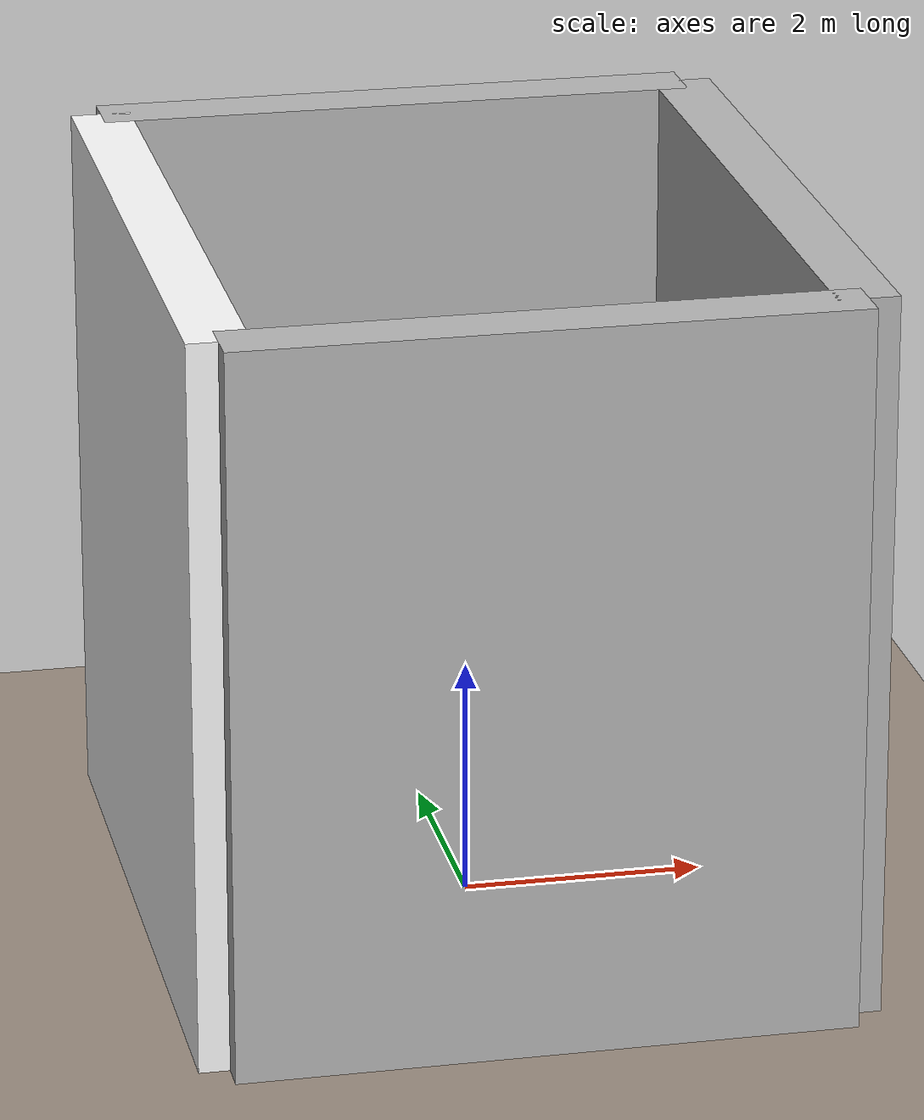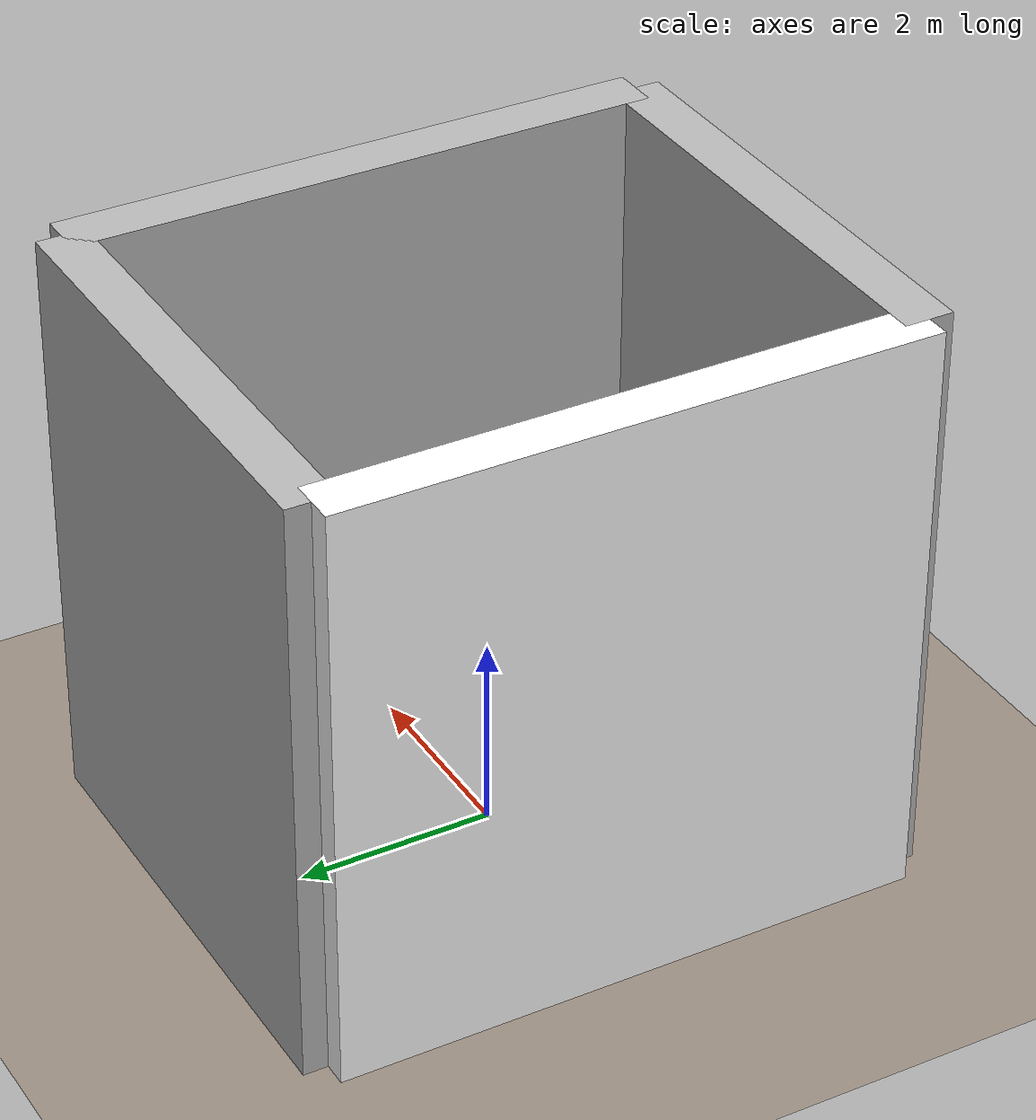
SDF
<sdf version="1.6">
 <world name="rectangular_walls_world">
  <physics name="default_physics" type="ode"><gravity>0 0 -9.81</gravity></physics>
  <light name="sun" type="directional">
   <pose>0 0 100 0 0 0</pose>
   <diffuse>0.8 0.8 0.8 1</diffuse>
   <specular>0.5 0.5 0.5 1</specular>
   <direction>-0.5 -0.5 -1</direction>
  </light>
  <model name="ground">
   <static>true</static>
   <link name="ground_link">
    <collision name="ground_collision">
     <geometry><plane><normal>0 0 1</normal><size>200 200</size></plane></geometry>
    </collision>
    <visual name="ground_visual">
     <geometry><plane><normal>0 0 1</normal><size>200 200</size></plane></geometry>
     <material><ambient>0.4 0.4 0.4 1</ambient><diffuse>0.6 0.55 0.5 1</diffuse></material>
    </visual>
   </link>
  </model>
  <model name="big_rectangular_walls">
   <static>true</static>
   <link name="walls_link">
    <visual name="front_visual">
     <pose>0 -3 3 0 0 0</pose>
     <geometry><box><size>5 0.5 6</size></box></geometry>
     <material>
      <pbr>
       <metal>
        <albedo_map>file:///home/pika/bricks.jpg</albedo_map>
        <roughness>0.8</roughness>
        <metalness>0.1</metalness>
       </metal>
      </pbr>
     </material>
    </visual>
    <collision name="front_collision">
     <pose>0 -3 3 0 0 0</pose>
     <geometry><box><size>5 0.5 6</size></box></geometry>
    </collision>
    <visual name="back_visual">
     <pose>0 3 3 0 0 0</pose>
     <geometry><box><size>5 0.5 6</size></box></geometry>
     <material>
      <pbr>
       <metal>
        <albedo_map>file:///home/pika/bricks.jpg</albedo_map>
        <roughness>0.8</roughness>
        <metalness>0.1</metalness>
       </metal>
      </pbr>
     </material>
    </visual>
    <collision name="back_collision">
     <pose>0 3 3 0 0 0</pose>
     <geometry><box><size>5 0.5 6</size></box></geometry>
    </collision>
    <visual name="left_visual">
     <pose>-2.5 0 3 0 0 0</pose>
     <geometry><box><size>0.5 6 6</size></box></geometry>
     <material>
      <diffuse>1.0 1.0 1.0 1</diffuse>
      <specular>0.5 0.5 0.5 1</specular>
      <pbr><metal><albedo_map>materials/textures/wall_texture.png</albedo_map></metal></pbr>
     </material>
    </visual>
    <collision name="left_collision">
     <pose>-2.5 0 3 0 0 0</pose>
     <geometry><box><size>0.5 6 6</size></box></geometry>
    </collision>
    <visual name="right_visual">
     <pose>2.5 0 3 0 0 0</pose>
     <geometry><box><size>0.5 6 6</size></box></geometry>
     <material>
      <pbr>
       <metal>
        <albedo_map>file:///home/pika/bricks.jpg</albedo_map>
        <roughness>0.8</roughness>
        <metalness>0.1</metalness>
       </metal>
      </pbr>
     </material>
    </visual>
    <collision name="right_collision">
     <pose>2.5 0 3 0 0 0</pose>
     <geometry><box><size>0.5 6 6</size></box></geometry>
    </collision>
   </link>
  </model>
 </world>
</sdf>
